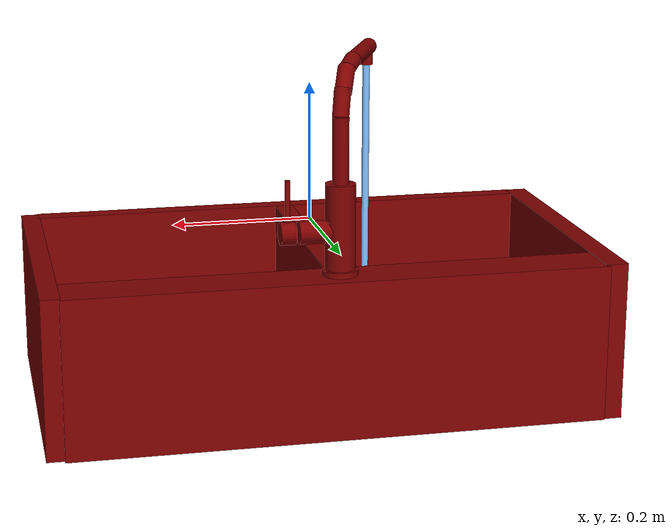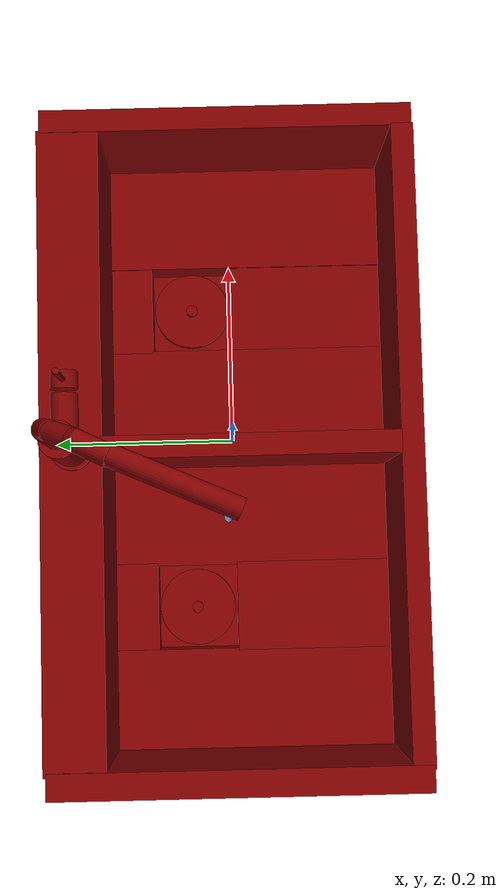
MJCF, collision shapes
<mujoco model="model">
  <compiler angle="radian"/>
  <asset>
    <mesh file="visuals/handle.obj" name="handle_vis"/>
    <mesh file="visuals/Body001.obj" name="Body001_vis"/>
    <mesh file="visuals/Funnel001.obj" name="Funnel001_vis"/>
    <mesh file="visuals/Funnel002.obj" name="Funnel002_vis"/>
    <mesh file="visuals/spout.obj" name="spout_vis"/>
    <texture file="visuals/T_BC001.png" name="Body001_material" type="2d"/>
    <material name="Body001_material" rgba="1 1 1 1.0" texture="Body001_material" shininess="0.4472135901451111" specular="0.3103448502657381"/>
    <texture file="visuals/T_BC001.png" name="handle_material" type="2d"/>
    <material name="handle_material" rgba="1 1 1 1.0" texture="handle_material" shininess="0.4472135901451111" specular="0.3103448502657381"/>
    <texture file="visuals/T_BC001.png" name="Funnel001_material" type="2d"/>
    <material name="Funnel001_material" rgba="1 1 1 1.0" texture="Funnel001_material" shininess="0.4472135901451111" specular="0.3103448502657381"/>
    <texture file="visuals/T_BC001.png" name="Funnel002_material" type="2d"/>
    <material name="Funnel002_material" rgba="1 1 1 1.0" texture="Funnel002_material" shininess="0.4472135901451111" specular="0.3103448502657381"/>
    <texture file="visuals/T_BC001.png" name="spout_material" type="2d"/>
    <material name="spout_material" rgba="1 1 1 1.0" texture="spout_material" shininess="0.4472135901451111" specular="0.3103448502657381"/>
  </asset>
  <default>
    <default class="visual">
      <geom conaffinity="0" contype="0" group="1" type="mesh"/>
    </default>
    <default class="collision">
      <geom group="0" rgba="0.5 0 0 0.5"/>
    </default>
    <default class="spawn">
      <geom group="0" rgba="1 1 1 0.5" contype="0" conaffinity="0"/>
      <site group="0" rgba="1 1 1 0.5"/>
    </default>
    <default class="region">
      <geom group="1" conaffinity="0" contype="0" rgba="0 1 0 0"/>
    </default>
  </default>
  <worldbody>
    <body>
      <body name="object">
        <geom mesh="Body001_vis" type="mesh" solimp="0.998 0.998 0.001" solref="0.001 1" density="100" friction="0.95 0.3 0.1" class="visual" material="Body001_material"/>
        <geom class="collision" type="box" pos="-0.389340 -0.000233 -0.144549" size="0.015872646123170853 0.22265970706939697 0.1139550730586052" quat="1.0 0.0 0.0 0.0"/>
        <geom class="collision" type="box" pos="0.391551 -0.000233 -0.144258" size="0.01353565976023674 0.22265970706939697 0.11292238533496857" quat="1.0 0.0 0.0 0.0"/>
        <geom class="collision" type="box" pos="0.000528 -0.211033 -0.144198" size="0.3795216679573059 0.013535669073462486 0.11342336237430573" quat="1.0 0.0 0.0 0.0"/>
        <geom class="collision" type="box" pos="0.000528 0.189241 -0.145105" size="0.3795216679573059 0.036623597145080566 0.11329737305641174" quat="1.0 0.0 0.0 0.0"/>
        <geom class="collision" type="box" pos="-0.000610 -0.022164 -0.140955" size="0.01353565976023674 0.17649586498737335 0.11048582196235657" quat="1.0 0.0 0.0 0.0"/>
        <geom class="collision" type="box" pos="-0.077273 -0.022164 -0.220203" size="0.06352309882640839 0.17649586498737335 0.02237696945667267" quat="1.0 0.0 0.0 0.0"/>
        <geom class="collision" type="box" pos="-0.313230 -0.022164 -0.219803" size="0.0654837042093277 0.17649586498737335 0.02237696945667267" quat="1.0 0.0 0.0 0.0"/>
        <geom class="collision" type="box" pos="-0.193836 -0.100896 -0.219128" size="0.05622352659702301 0.09776327013969421 0.02237696945667267" quat="1.0 0.0 0.0 0.0"/>
        <geom class="collision" type="box" pos="-0.193836 0.127578 -0.219854" size="0.05622352659702301 0.02817593887448311 0.02237696945667267" quat="1.0 0.0 0.0 0.0"/>
        <geom class="collision" type="box" pos="0.075699 -0.022164 -0.219243" size="0.06352309882640839 0.17649586498737335 0.02237696945667267" quat="1.0 0.0 0.0 0.0"/>
        <geom class="collision" type="box" pos="0.313066 -0.022164 -0.217598" size="0.06538788974285126 0.17649586498737335 0.02237696945667267" quat="1.0 0.0 0.0 0.0"/>
        <geom class="collision" type="box" pos="0.193068 -0.100896 -0.219419" size="0.05622352659702301 0.09776327013969421 0.02237696945667267" quat="1.0 0.0 0.0 0.0"/>
        <geom class="collision" type="box" pos="0.193068 0.129330 -0.219098" size="0.05622352659702301 0.029102038592100143 0.02237696945667267" quat="1.0 0.0 0.0 0.0"/>
        <geom class="collision" type="box" pos="-0.193836 0.048663 -0.247918" size="0.05622352659702301 0.052343860268592834 0.0035227984189987183" quat="1.0 0.0 0.0 0.0"/>
        <geom class="collision" type="box" pos="0.193594 0.048663 -0.247918" size="0.05622352659702301 0.052343860268592834 0.0035227984189987183" quat="1.0 0.0 0.0 0.0"/>
        <geom class="collision" type="cylinder" pos="-0.002267 0.187273 0.035274" size="0.02084951102733612 0.060565002262592316" quat="1.0 0.0 0.0 0.0"/>
        <geom class="collision" type="cylinder" pos="-0.002029 0.187034 -0.026998" size="0.02525591477751732 0.00408189045265317" quat="1.0 0.0 0.0 0.0"/>
        <geom class="collision" type="cylinder" pos="0.032088 0.187531 0.030339" size="0.015646332874894142 0.02308945171535015" quat="0.7071068286895752 -0.0 0.7071067690849304 0.0"/>
        <body name="handle">
          <joint axis="1.0 0.0 0.0" pos="0.069668 0.187561 0.030875" limited="true" name="handle_joint_hinge_0" type="hinge" range="-0.7853981633974483 0.7853981633974483" damping="1" frictionloss="1" armature=".01" stiffness="0.05"/>
          <joint axis="0.0 1.0 0.0" pos="0.069668 0.187561 0.030875" limited="true" name="handle_joint_hinge_1" type="hinge" range="0.0 0.2617993877991494" damping="1" frictionloss="1" armature=".01" stiffness="0.05"/>
          <geom mesh="handle_vis" type="mesh" solimp="0.998 0.998 0.001" solref="0.001 1" density="100" friction="0.95 0.3 0.1" class="visual" material="handle_material"/>
          <geom class="collision" type="cylinder" pos="0.070533 0.187531 0.030339" size="0.015646332874894142 0.01035401877015829" quat="0.7071068286895752 -0.0 0.7071067690849304 0.0"/>
          <geom class="collision" type="cylinder" pos="0.070316 0.187393 0.073817" size="0.003538890741765499 0.02964147925376892" quat="7.549790126404332e-08 0.0 1.0 0.0"/>
        </body>
        <body name="Funnel001">
          <joint axis="0.0 0.0 1.0" pos="-0.194781 0.048428 -0.212791" limited="true" name="Funnel001_joint" range="0.0 0.15" type="slide" damping="1" frictionloss="1" armature=".01" stiffness="0.05"/>
          <geom mesh="Funnel001_vis" type="mesh" solimp="0.998 0.998 0.001" solref="0.001 1" density="100" friction="0.95 0.3 0.1" class="visual" material="Funnel001_material"/>
          <geom class="collision" type="cylinder" pos="-0.194711 0.048803 -0.220507" size="0.04888333007693291 0.00398315628990531" quat="1.0 0.0 0.0 0.0"/>
          <geom class="collision" type="cylinder" pos="-0.194711 0.048803 -0.211207" size="0.0071325781755149364 0.004274081904441118" quat="1.0 0.0 0.0 0.0"/>
        </body>
        <body name="Funnel002">
          <joint axis="0.0 0.0 1.0" pos="0.194768 0.048450 -0.212808" limited="true" name="Funnel002_joint" range="0.0 0.15" type="slide" damping="1" frictionloss="1" armature=".01" stiffness="0.05"/>
          <geom mesh="Funnel002_vis" type="mesh" solimp="0.998 0.998 0.001" solref="0.001 1" density="100" friction="0.95 0.3 0.1" class="visual" material="Funnel002_material"/>
          <geom class="collision" type="cylinder" pos="0.194806 0.048803 -0.218988" size="0.04888333007693291 0.0035114630591124296" quat="1.0 0.0 0.0 0.0"/>
          <geom class="collision" type="cylinder" pos="0.194415 0.048803 -0.211207" size="0.0071325781755149364 0.004274081904441118" quat="1.0 0.0 0.0 0.0"/>
        </body>
        <body name="spout">
          <joint axis="0.0 0.0 1.0" pos="-0.001977 0.188278 0.175298" limited="true" name="spout_joint" range="-0.7853981633974483 1.0471975511965976" type="hinge" damping="1" frictionloss="1" armature=".01" stiffness="0.05"/>
          <site type="cylinder" rgba="0.5 0.75 1 1" size="0.005098273511976004 0.22427064180374146" pos="-0.081062 0.006707 0.009432" name="water"/>
          <geom mesh="spout_vis" type="mesh" solimp="0.998 0.998 0.001" solref="0.001 1" density="100" friction="0.95 0.3 0.1" class="visual" material="spout_material"/>
          <geom class="collision" type="cylinder" pos="-0.001943 0.188546 0.139962" size="0.011443710885941982 0.04692549258470535" quat="1.0 0.0 0.0 0.0"/>
          <geom class="collision" type="cylinder" pos="-0.004301 0.182895 0.204188" size="0.011443709954619408 0.020029915496706963" quat="0.9840264320373535 0.1626436710357666 -0.06819719076156616 -0.024252736940979958"/>
          <geom class="collision" type="cylinder" pos="-0.012557 0.164999 0.231127" size="0.011834868229925632 0.020714567974209785" quat="0.8972313404083252 0.38146403431892395 -0.05726788192987442 -0.21489889919757843"/>
          <geom class="collision" type="cylinder" pos="-0.026252 0.134414 0.246681" size="0.011443709023296833 0.020029917359352112" quat="0.7550481557846069 0.6142236590385437 -0.14477390050888062 -0.17796654999256134"/>
          <geom class="collision" type="cylinder" pos="-0.060158 0.056558 0.248429" size="0.011443709954619408 0.06917614489793777" quat="0.6892174482345581 0.6950477957725525 -0.144886314868927 -0.14455394446849823"/>
          <geom class="collision" type="cylinder" pos="-0.081195 0.007322 0.232442" size="0.008876348845660686 0.008142790757119656" quat="1.0 0.0 0.0 0.0"/>
        </body>
        <geom class="region" name="reg_main" type="box" pos="0.0 0.0 -0.14559899999999998" size="0.405628 0.224581 0.113686"/>
        <geom class="region" name="reg_basin_left" type="box" pos="-0.1957635 -0.022911 -0.1180745" size="0.17870250000000001 0.17196099999999997 0.0729715"/>
        <geom class="region" name="reg_basin_right" type="box" pos="0.1939765 -0.022911 -0.1180745" size="0.1787025 0.17196099999999997 0.0729715"/>
      </body>
    </body>
  </worldbody>
  <actuator>
    <motor name="handle_joint_hinge_0_actuator" joint="handle_joint_hinge_0" gear="10"/>
    <motor name="handle_joint_hinge_1_actuator" joint="handle_joint_hinge_1" gear="10"/>
    <motor name="Funnel001_joint_actuator" joint="Funnel001_joint" gear="10"/>
    <motor name="Funnel002_joint_actuator" joint="Funnel002_joint" gear="10"/>
    <motor name="spout_joint_actuator" joint="spout_joint" gear="10"/>
  </actuator>
</mujoco>
